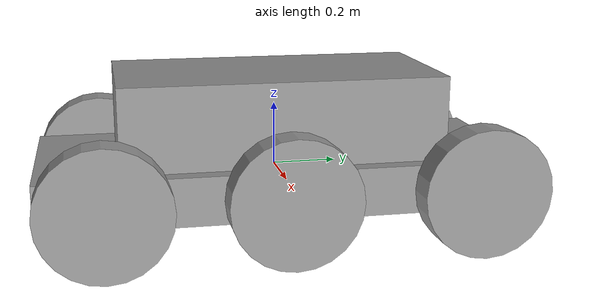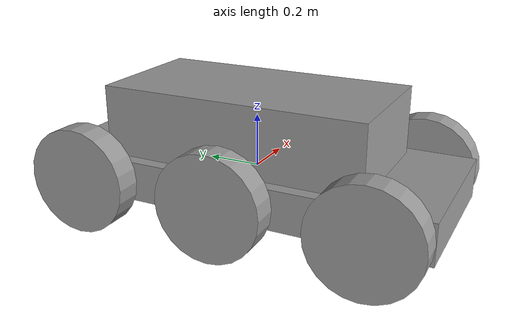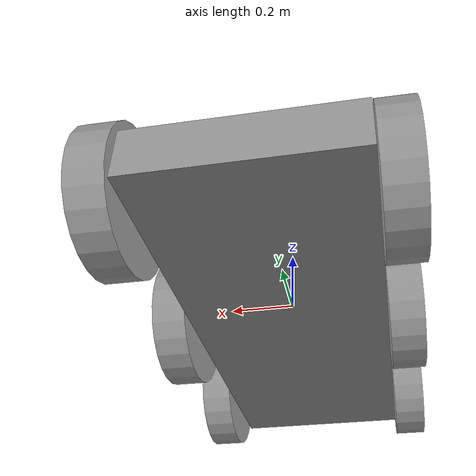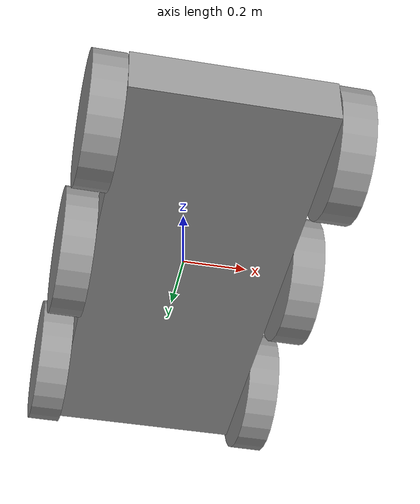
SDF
<?xml version='1.0'?>
<sdf version='1.6'>
  <model name='Humanoid_Robot'>
    <link name='link_0'>
      <pose frame=''>0 -0.004307 -0.025 0 -0 0</pose>
      <inertial>
        <mass>1</mass>
        <inertia>
          <ixx>0.166667</ixx>
          <ixy>0</ixy>
          <ixz>0</ixz>
          <iyy>0.166667</iyy>
          <iyz>0</iyz>
          <izz>0.166667</izz>
        </inertia>
        <pose frame=''>0 0 0 0 -0 0</pose>
      </inertial>
      <gravity>1</gravity>
      <self_collide>0</self_collide>
      <kinematic>0</kinematic>
      <visual name='visual'>
        <pose frame=''>0 0 0 0 -0 0</pose>
        <geometry>
          <box>
            <size>0.6 1.5 0.15</size>
          </box>
        </geometry>
        <material>
          <lighting>1</lighting>
          <script>
            <uri>file://media/materials/scripts/gazebo.material</uri>
            <name>Gazebo/Grey</name>
          </script>
          <shader type='pixel'>
            <normal_map>__default__</normal_map>
          </shader>
          <ambient>0.3 0.3 0.3 1</ambient>
          <diffuse>0.7 0.7 0.7 1</diffuse>
          <specular>0.01 0.01 0.01 1</specular>
          <emissive>0 0 0 1</emissive>
        </material>
        <transparency>0</transparency>
        <cast_shadows>1</cast_shadows>
      </visual>
      <collision name='collision'>
        <laser_retro>0</laser_retro>
        <max_contacts>10</max_contacts>
        <pose frame=''>0 0 0 0 -0 0</pose>
        <geometry>
          <box>
            <size>0.6 1.5 0.15</size>
          </box>
        </geometry>
        <surface>
          <friction>
            <ode>
              <mu>1</mu>
              <mu2>1</mu2>
              <fdir1>0 0 0</fdir1>
              <slip1>0</slip1>
              <slip2>0</slip2>
            </ode>
            <torsional>
              <coefficient>1</coefficient>
              <patch_radius>0</patch_radius>
              <surface_radius>0</surface_radius>
              <use_patch_radius>1</use_patch_radius>
              <ode>
                <slip>0</slip>
              </ode>
            </torsional>
          </friction>
          <bounce>
            <restitution_coefficient>0</restitution_coefficient>
            <threshold>1e+06</threshold>
          </bounce>
          <contact>
            <collide_without_contact>0</collide_without_contact>
            <collide_without_contact_bitmask>1</collide_without_contact_bitmask>
            <collide_bitmask>1</collide_bitmask>
            <ode>
              <soft_cfm>0</soft_cfm>
              <soft_erp>0.2</soft_erp>
              <kp>1e+13</kp>
              <kd>1</kd>
              <max_vel>0.01</max_vel>
              <min_depth>0</min_depth>
            </ode>
            <bullet>
              <split_impulse>1</split_impulse>
              <split_impulse_penetration_threshold>-0.01</split_impulse_penetration_threshold>
              <soft_cfm>0</soft_cfm>
              <soft_erp>0.2</soft_erp>
              <kp>1e+13</kp>
              <kd>1</kd>
            </bullet>
          </contact>
        </surface>
      </collision>
    </link>
    <link name='link_1_clone'>
      <pose frame=''>-0.351854 0.545219 -0.025 1.57079 -9.6e-05 -1.56152</pose>
      <inertial>
        <mass>1</mass>
        <inertia>
          <ixx>0.145833</ixx>
          <ixy>0</ixy>
          <ixz>0</ixz>
          <iyy>0.145833</iyy>
          <iyz>0</iyz>
          <izz>0.125</izz>
        </inertia>
        <pose frame=''>0 0 0 0 -0 0</pose>
      </inertial>
      <self_collide>0</self_collide>
      <kinematic>0</kinematic>
      <visual name='visual'>
        <pose frame=''>0 0 0 0 -0 0</pose>
        <geometry>
          <cylinder>
            <radius>0.2</radius>
            <length>0.1</length>
          </cylinder>
        </geometry>
        <material>
          <lighting>1</lighting>
          <script>
            <uri>file://media/materials/scripts/gazebo.material</uri>
            <name>Gazebo/Grey</name>
          </script>
          <shader type='pixel'>
            <normal_map>__default__</normal_map>
          </shader>
          <ambient>0.3 0.3 0.3 1</ambient>
          <diffuse>0.7 0.7 0.7 1</diffuse>
          <specular>0.01 0.01 0.01 1</specular>
          <emissive>0 0 0 1</emissive>
        </material>
        <transparency>0</transparency>
        <cast_shadows>1</cast_shadows>
      </visual>
      <collision name='collision'>
        <laser_retro>0</laser_retro>
        <max_contacts>10</max_contacts>
        <pose frame=''>0 0 0 0 -0 0</pose>
        <geometry>
          <cylinder>
            <radius>0.2</radius>
            <length>0.1</length>
          </cylinder>
        </geometry>
        <surface>
          <friction>
            <ode>
              <mu>1</mu>
              <mu2>1</mu2>
              <fdir1>0 0 0</fdir1>
              <slip1>0</slip1>
              <slip2>0</slip2>
            </ode>
            <torsional>
              <coefficient>1</coefficient>
              <patch_radius>0</patch_radius>
              <surface_radius>0</surface_radius>
              <use_patch_radius>1</use_patch_radius>
              <ode>
                <slip>0</slip>
              </ode>
            </torsional>
          </friction>
          <bounce>
            <restitution_coefficient>0</restitution_coefficient>
            <threshold>1e+06</threshold>
          </bounce>
          <contact>
            <collide_without_contact>0</collide_without_contact>
            <collide_without_contact_bitmask>1</collide_without_contact_bitmask>
            <collide_bitmask>1</collide_bitmask>
            <ode>
              <soft_cfm>0</soft_cfm>
              <soft_erp>0.2</soft_erp>
              <kp>1e+13</kp>
              <kd>1</kd>
              <max_vel>0.01</max_vel>
              <min_depth>0</min_depth>
            </ode>
            <bullet>
              <split_impulse>1</split_impulse>
              <split_impulse_penetration_threshold>-0.01</split_impulse_penetration_threshold>
              <soft_cfm>0</soft_cfm>
              <soft_erp>0.2</soft_erp>
              <kp>1e+13</kp>
              <kd>1</kd>
            </bullet>
          </contact>
        </surface>
      </collision>
    </link>
    <link name='link_1_clone_0'>
      <pose frame=''>-0.351854 -0.553832 -0.025 1.57079 -9.6e-05 -1.56152</pose>
      <inertial>
        <mass>1</mass>
        <inertia>
          <ixx>0.145833</ixx>
          <ixy>0</ixy>
          <ixz>0</ixz>
          <iyy>0.145833</iyy>
          <iyz>0</iyz>
          <izz>0.125</izz>
        </inertia>
        <pose frame=''>0 0 0 0 -0 0</pose>
      </inertial>
      <self_collide>0</self_collide>
      <kinematic>0</kinematic>
      <visual name='visual'>
        <pose frame=''>0 0 0 0 -0 0</pose>
        <geometry>
          <cylinder>
            <radius>0.2</radius>
            <length>0.1</length>
          </cylinder>
        </geometry>
        <material>
          <lighting>1</lighting>
          <script>
            <uri>file://media/materials/scripts/gazebo.material</uri>
            <name>Gazebo/Grey</name>
          </script>
          <shader type='pixel'>
            <normal_map>__default__</normal_map>
          </shader>
          <ambient>0.3 0.3 0.3 1</ambient>
          <diffuse>0.7 0.7 0.7 1</diffuse>
          <specular>0.01 0.01 0.01 1</specular>
          <emissive>0 0 0 1</emissive>
        </material>
        <transparency>0</transparency>
        <cast_shadows>1</cast_shadows>
      </visual>
      <collision name='collision'>
        <laser_retro>0</laser_retro>
        <max_contacts>10</max_contacts>
        <pose frame=''>0 0 0 0 -0 0</pose>
        <geometry>
          <cylinder>
            <radius>0.2</radius>
            <length>0.1</length>
          </cylinder>
        </geometry>
        <surface>
          <friction>
            <ode>
              <mu>1</mu>
              <mu2>1</mu2>
              <fdir1>0 0 0</fdir1>
              <slip1>0</slip1>
              <slip2>0</slip2>
            </ode>
            <torsional>
              <coefficient>1</coefficient>
              <patch_radius>0</patch_radius>
              <surface_radius>0</surface_radius>
              <use_patch_radius>1</use_patch_radius>
              <ode>
                <slip>0</slip>
              </ode>
            </torsional>
          </friction>
          <bounce>
            <restitution_coefficient>0</restitution_coefficient>
            <threshold>1e+06</threshold>
          </bounce>
          <contact>
            <collide_without_contact>0</collide_without_contact>
            <collide_without_contact_bitmask>1</collide_without_contact_bitmask>
            <collide_bitmask>1</collide_bitmask>
            <ode>
              <soft_cfm>0</soft_cfm>
              <soft_erp>0.2</soft_erp>
              <kp>1e+13</kp>
              <kd>1</kd>
              <max_vel>0.01</max_vel>
              <min_depth>0</min_depth>
            </ode>
            <bullet>
              <split_impulse>1</split_impulse>
              <split_impulse_penetration_threshold>-0.01</split_impulse_penetration_threshold>
              <soft_cfm>0</soft_cfm>
              <soft_erp>0.2</soft_erp>
              <kp>1e+13</kp>
              <kd>1</kd>
            </bullet>
          </contact>
        </surface>
      </collision>
    </link>
    <link name='link_1_clone_1'>
      <pose frame=''>0.351854 0.579674 -0.025 1.57079 -9.6e-05 -1.56152</pose>
      <inertial>
        <mass>1</mass>
        <inertia>
          <ixx>0.145833</ixx>
          <ixy>0</ixy>
          <ixz>0</ixz>
          <iyy>0.145833</iyy>
          <iyz>0</iyz>
          <izz>0.125</izz>
        </inertia>
        <pose frame=''>0 0 0 0 -0 0</pose>
      </inertial>
      <self_collide>0</self_collide>
      <kinematic>0</kinematic>
      <visual name='visual'>
        <pose frame=''>0 0 0 0 -0 0</pose>
        <geometry>
          <cylinder>
            <radius>0.2</radius>
            <length>0.1</length>
          </cylinder>
        </geometry>
        <material>
          <lighting>1</lighting>
          <script>
            <uri>file://media/materials/scripts/gazebo.material</uri>
            <name>Gazebo/Grey</name>
          </script>
          <shader type='pixel'>
            <normal_map>__default__</normal_map>
          </shader>
          <ambient>0.3 0.3 0.3 1</ambient>
          <diffuse>0.7 0.7 0.7 1</diffuse>
          <specular>0.01 0.01 0.01 1</specular>
          <emissive>0 0 0 1</emissive>
        </material>
        <transparency>0</transparency>
        <cast_shadows>1</cast_shadows>
      </visual>
      <collision name='collision'>
        <laser_retro>0</laser_retro>
        <max_contacts>10</max_contacts>
        <pose frame=''>0 0 0 0 -0 0</pose>
        <geometry>
          <cylinder>
            <radius>0.2</radius>
            <length>0.1</length>
          </cylinder>
        </geometry>
        <surface>
          <friction>
            <ode>
              <mu>1</mu>
              <mu2>1</mu2>
              <fdir1>0 0 0</fdir1>
              <slip1>0</slip1>
              <slip2>0</slip2>
            </ode>
            <torsional>
              <coefficient>1</coefficient>
              <patch_radius>0</patch_radius>
              <surface_radius>0</surface_radius>
              <use_patch_radius>1</use_patch_radius>
              <ode>
                <slip>0</slip>
              </ode>
            </torsional>
          </friction>
          <bounce>
            <restitution_coefficient>0</restitution_coefficient>
            <threshold>1e+06</threshold>
          </bounce>
          <contact>
            <collide_without_contact>0</collide_without_contact>
            <collide_without_contact_bitmask>1</collide_without_contact_bitmask>
            <collide_bitmask>1</collide_bitmask>
            <ode>
              <soft_cfm>0</soft_cfm>
              <soft_erp>0.2</soft_erp>
              <kp>1e+13</kp>
              <kd>1</kd>
              <max_vel>0.01</max_vel>
              <min_depth>0</min_depth>
            </ode>
            <bullet>
              <split_impulse>1</split_impulse>
              <split_impulse_penetration_threshold>-0.01</split_impulse_penetration_threshold>
              <soft_cfm>0</soft_cfm>
              <soft_erp>0.2</soft_erp>
              <kp>1e+13</kp>
              <kd>1</kd>
            </bullet>
          </contact>
        </surface>
      </collision>
    </link>
    <link name='link_1_clone_1_clone'>
      <pose frame=''>0.351854 -0.004307 -0.025 1.57079 -9.6e-05 -1.56152</pose>
      <inertial>
        <mass>1</mass>
        <inertia>
          <ixx>0.145833</ixx>
          <ixy>0</ixy>
          <ixz>0</ixz>
          <iyy>0.145833</iyy>
          <iyz>0</iyz>
          <izz>0.125</izz>
        </inertia>
        <pose frame=''>0 0 0 0 -0 0</pose>
      </inertial>
      <self_collide>0</self_collide>
      <kinematic>0</kinematic>
      <visual name='visual'>
        <pose frame=''>0 0 0 0 -0 0</pose>
        <geometry>
          <cylinder>
            <radius>0.2</radius>
            <length>0.1</length>
          </cylinder>
        </geometry>
        <material>
          <lighting>1</lighting>
          <script>
            <uri>file://media/materials/scripts/gazebo.material</uri>
            <name>Gazebo/Grey</name>
          </script>
          <shader type='pixel'>
            <normal_map>__default__</normal_map>
          </shader>
          <ambient>0.3 0.3 0.3 1</ambient>
          <diffuse>0.7 0.7 0.7 1</diffuse>
          <specular>0.01 0.01 0.01 1</specular>
          <emissive>0 0 0 1</emissive>
        </material>
        <transparency>0</transparency>
        <cast_shadows>1</cast_shadows>
      </visual>
      <collision name='collision'>
        <laser_retro>0</laser_retro>
        <max_contacts>10</max_contacts>
        <pose frame=''>0 0 0 0 -0 0</pose>
        <geometry>
          <cylinder>
            <radius>0.2</radius>
            <length>0.1</length>
          </cylinder>
        </geometry>
        <surface>
          <friction>
            <ode>
              <mu>1</mu>
              <mu2>1</mu2>
              <fdir1>0 0 0</fdir1>
              <slip1>0</slip1>
              <slip2>0</slip2>
            </ode>
            <torsional>
              <coefficient>1</coefficient>
              <patch_radius>0</patch_radius>
              <surface_radius>0</surface_radius>
              <use_patch_radius>1</use_patch_radius>
              <ode>
                <slip>0</slip>
              </ode>
            </torsional>
          </friction>
          <bounce>
            <restitution_coefficient>0</restitution_coefficient>
            <threshold>1e+06</threshold>
          </bounce>
          <contact>
            <collide_without_contact>0</collide_without_contact>
            <collide_without_contact_bitmask>1</collide_without_contact_bitmask>
            <collide_bitmask>1</collide_bitmask>
            <ode>
              <soft_cfm>0</soft_cfm>
              <soft_erp>0.2</soft_erp>
              <kp>1e+13</kp>
              <kd>1</kd>
              <max_vel>0.01</max_vel>
              <min_depth>0</min_depth>
            </ode>
            <bullet>
              <split_impulse>1</split_impulse>
              <split_impulse_penetration_threshold>-0.01</split_impulse_penetration_threshold>
              <soft_cfm>0</soft_cfm>
              <soft_erp>0.2</soft_erp>
              <kp>1e+13</kp>
              <kd>1</kd>
            </bullet>
          </contact>
        </surface>
      </collision>
    </link>
    <link name='link_1_clone_2'>
      <pose frame=''>-0.351854 -0.004307 -0.025 1.57079 -9.6e-05 -1.56152</pose>
      <inertial>
        <mass>1</mass>
        <inertia>
          <ixx>0.145833</ixx>
          <ixy>0</ixy>
          <ixz>0</ixz>
          <iyy>0.145833</iyy>
          <iyz>0</iyz>
          <izz>0.125</izz>
        </inertia>
        <pose frame=''>0 0 0 0 -0 0</pose>
      </inertial>
      <self_collide>0</self_collide>
      <kinematic>0</kinematic>
      <visual name='visual'>
        <pose frame=''>0 0 0 0 -0 0</pose>
        <geometry>
          <cylinder>
            <radius>0.2</radius>
            <length>0.1</length>
          </cylinder>
        </geometry>
        <material>
          <lighting>1</lighting>
          <script>
            <uri>file://media/materials/scripts/gazebo.material</uri>
            <name>Gazebo/Grey</name>
          </script>
          <shader type='pixel'>
            <normal_map>__default__</normal_map>
          </shader>
          <ambient>0.3 0.3 0.3 1</ambient>
          <diffuse>0.7 0.7 0.7 1</diffuse>
          <specular>0.01 0.01 0.01 1</specular>
          <emissive>0 0 0 1</emissive>
        </material>
        <transparency>0</transparency>
        <cast_shadows>1</cast_shadows>
      </visual>
      <collision name='collision'>
        <laser_retro>0</laser_retro>
        <max_contacts>10</max_contacts>
        <pose frame=''>0 0 0 0 -0 0</pose>
        <geometry>
          <cylinder>
            <radius>0.2</radius>
            <length>0.1</length>
          </cylinder>
        </geometry>
        <surface>
          <friction>
            <ode>
              <mu>1</mu>
              <mu2>1</mu2>
              <fdir1>0 0 0</fdir1>
              <slip1>0</slip1>
              <slip2>0</slip2>
            </ode>
            <torsional>
              <coefficient>1</coefficient>
              <patch_radius>0</patch_radius>
              <surface_radius>0</surface_radius>
              <use_patch_radius>1</use_patch_radius>
              <ode>
                <slip>0</slip>
              </ode>
            </torsional>
          </friction>
          <bounce>
            <restitution_coefficient>0</restitution_coefficient>
            <threshold>1e+06</threshold>
          </bounce>
          <contact>
            <collide_without_contact>0</collide_without_contact>
            <collide_without_contact_bitmask>1</collide_without_contact_bitmask>
            <collide_bitmask>1</collide_bitmask>
            <ode>
              <soft_cfm>0</soft_cfm>
              <soft_erp>0.2</soft_erp>
              <kp>1e+13</kp>
              <kd>1</kd>
              <max_vel>0.01</max_vel>
              <min_depth>0</min_depth>
            </ode>
            <bullet>
              <split_impulse>1</split_impulse>
              <split_impulse_penetration_threshold>-0.01</split_impulse_penetration_threshold>
              <soft_cfm>0</soft_cfm>
              <soft_erp>0.2</soft_erp>
              <kp>1e+13</kp>
              <kd>1</kd>
            </bullet>
          </contact>
        </surface>
      </collision>
    </link>
    <link name='link_1_clone_3'>
      <pose frame=''>0.351854 -0.553832 -0.025 1.57079 -9.6e-05 -1.56152</pose>
      <inertial>
        <mass>1</mass>
        <inertia>
          <ixx>0.145833</ixx>
          <ixy>0</ixy>
          <ixz>0</ixz>
          <iyy>0.145833</iyy>
          <iyz>0</iyz>
          <izz>0.125</izz>
        </inertia>
        <pose frame=''>0 0 0 0 -0 0</pose>
      </inertial>
      <self_collide>0</self_collide>
      <kinematic>0</kinematic>
      <visual name='visual'>
        <pose frame=''>0 0 0 0 -0 0</pose>
        <geometry>
          <cylinder>
            <radius>0.2</radius>
            <length>0.1</length>
          </cylinder>
        </geometry>
        <material>
          <lighting>1</lighting>
          <script>
            <uri>file://media/materials/scripts/gazebo.material</uri>
            <name>Gazebo/Grey</name>
          </script>
          <shader type='pixel'>
            <normal_map>__default__</normal_map>
          </shader>
          <ambient>0.3 0.3 0.3 1</ambient>
          <diffuse>0.7 0.7 0.7 1</diffuse>
          <specular>0.01 0.01 0.01 1</specular>
          <emissive>0 0 0 1</emissive>
        </material>
        <transparency>0</transparency>
        <cast_shadows>1</cast_shadows>
      </visual>
      <collision name='collision'>
        <laser_retro>0</laser_retro>
        <max_contacts>10</max_contacts>
        <pose frame=''>0 0 0 0 -0 0</pose>
        <geometry>
          <cylinder>
            <radius>0.2</radius>
            <length>0.1</length>
          </cylinder>
        </geometry>
        <surface>
          <friction>
            <ode>
              <mu>1</mu>
              <mu2>1</mu2>
              <fdir1>0 0 0</fdir1>
              <slip1>0</slip1>
              <slip2>0</slip2>
            </ode>
            <torsional>
              <coefficient>1</coefficient>
              <patch_radius>0</patch_radius>
              <surface_radius>0</surface_radius>
              <use_patch_radius>1</use_patch_radius>
              <ode>
                <slip>0</slip>
              </ode>
            </torsional>
          </friction>
          <bounce>
            <restitution_coefficient>0</restitution_coefficient>
            <threshold>1e+06</threshold>
          </bounce>
          <contact>
            <collide_without_contact>0</collide_without_contact>
            <collide_without_contact_bitmask>1</collide_without_contact_bitmask>
            <collide_bitmask>1</collide_bitmask>
            <ode>
              <soft_cfm>0</soft_cfm>
              <soft_erp>0.2</soft_erp>
              <kp>1e+13</kp>
              <kd>1</kd>
              <max_vel>0.01</max_vel>
              <min_depth>0</min_depth>
            </ode>
            <bullet>
              <split_impulse>1</split_impulse>
              <split_impulse_penetration_threshold>-0.01</split_impulse_penetration_threshold>
              <soft_cfm>0</soft_cfm>
              <soft_erp>0.2</soft_erp>
              <kp>1e+13</kp>
              <kd>1</kd>
            </bullet>
          </contact>
        </surface>
      </collision>
    </link>
    <link name='link_2'>
      <pose frame=''>0 -0.004307 0.175 0 -0 0</pose>
      <inertial>
        <mass>1</mass>
        <inertia>
          <ixx>0.166667</ixx>
          <ixy>0</ixy>
          <ixz>0</ixz>
          <iyy>0.166667</iyy>
          <iyz>0</iyz>
          <izz>0.166667</izz>
        </inertia>
        <pose frame=''>0 0 0 0 -0 0</pose>
      </inertial>
      <gravity>1</gravity>
      <self_collide>0</self_collide>
      <kinematic>0</kinematic>
      <visual name='visual'>
        <pose frame=''>0 0 0 0 -0 0</pose>
        <geometry>
          <box>
            <size>0.5 1 0.27</size>
          </box>
        </geometry>
        <material>
          <lighting>1</lighting>
          <script>
            <uri>file://media/materials/scripts/gazebo.material</uri>
            <name>Gazebo/Grey</name>
          </script>
          <shader type='pixel'>
            <normal_map>__default__</normal_map>
          </shader>
          <ambient>0.3 0.3 0.3 1</ambient>
          <diffuse>0.7 0.7 0.7 1</diffuse>
          <specular>0.01 0.01 0.01 1</specular>
          <emissive>0 0 0 1</emissive>
        </material>
        <transparency>0</transparency>
        <cast_shadows>1</cast_shadows>
      </visual>
      <collision name='collision'>
        <laser_retro>0</laser_retro>
        <max_contacts>10</max_contacts>
        <pose frame=''>0 0 0 0 -0 0</pose>
        <geometry>
          <box>
            <size>0.5 1 0.3</size>
          </box>
        </geometry>
        <surface>
          <friction>
            <ode>
              <mu>1</mu>
              <mu2>1</mu2>
              <fdir1>0 0 0</fdir1>
              <slip1>0</slip1>
              <slip2>0</slip2>
            </ode>
            <torsional>
              <coefficient>1</coefficient>
              <patch_radius>0</patch_radius>
              <surface_radius>0</surface_radius>
              <use_patch_radius>1</use_patch_radius>
              <ode>
                <slip>0</slip>
              </ode>
            </torsional>
          </friction>
          <bounce>
            <restitution_coefficient>0</restitution_coefficient>
            <threshold>1e+06</threshold>
          </bounce>
          <contact>
            <collide_without_contact>0</collide_without_contact>
            <collide_without_contact_bitmask>1</collide_without_contact_bitmask>
            <collide_bitmask>1</collide_bitmask>
            <ode>
              <soft_cfm>0</soft_cfm>
              <soft_erp>0.2</soft_erp>
              <kp>1e+13</kp>
              <kd>1</kd>
              <max_vel>0.01</max_vel>
              <min_depth>0</min_depth>
            </ode>
            <bullet>
              <split_impulse>1</split_impulse>
              <split_impulse_penetration_threshold>-0.01</split_impulse_penetration_threshold>
              <soft_cfm>0</soft_cfm>
              <soft_erp>0.2</soft_erp>
              <kp>1e+13</kp>
              <kd>1</kd>
            </bullet>
          </contact>
        </surface>
      </collision>
    </link>
    <joint name='link_0_JOINT_0' type='revolute'>
      <parent>link_0</parent>
      <child>link_1_clone_0</child>
      <pose frame=''>0 0 0 0 -0 0</pose>
      <axis>
        <xyz>0 0 1</xyz>
        <use_parent_model_frame>0</use_parent_model_frame>
        <limit>
          <lower>-1.79769e+308</lower>
          <upper>1.79769e+308</upper>
          <effort>-1</effort>
          <velocity>-1</velocity>
        </limit>
        <dynamics>
          <spring_reference>0</spring_reference>
          <spring_stiffness>0</spring_stiffness>
          <damping>0</damping>
        </dynamics>
      </axis>
      <physics>
        <ode>
          <limit>
            <cfm>0</cfm>
            <erp>0.2</erp>
          </limit>
          <suspension>
            <cfm>0</cfm>
            <erp>0.2</erp>
          </suspension>
        </ode>
      </physics>
    </joint>
    <joint name='link_0_JOINT_10' type='revolute'>
      <parent>link_0</parent>
      <child>link_1_clone_1_clone</child>
      <pose frame=''>0 0 0 0 -0 0</pose>
      <axis>
        <xyz>-0 -0 -1</xyz>
        <use_parent_model_frame>0</use_parent_model_frame>
        <limit>
          <lower>-1.79769e+308</lower>
          <upper>1.79769e+308</upper>
          <effort>-1</effort>
          <velocity>-1</velocity>
        </limit>
        <dynamics>
          <spring_reference>0</spring_reference>
          <spring_stiffness>0</spring_stiffness>
          <damping>0</damping>
        </dynamics>
      </axis>
      <physics>
        <ode>
          <limit>
            <cfm>0</cfm>
            <erp>0.2</erp>
          </limit>
          <suspension>
            <cfm>0</cfm>
            <erp>0.2</erp>
          </suspension>
        </ode>
      </physics>
    </joint>
    <joint name='link_0_JOINT_2' type='revolute'>
      <parent>link_0</parent>
      <child>link_1_clone_3</child>
      <pose frame=''>0 0 0 0 -0 0</pose>
      <axis>
        <xyz>-0 -0 -1</xyz>
        <use_parent_model_frame>0</use_parent_model_frame>
        <limit>
          <lower>-1.79769e+308</lower>
          <upper>1.79769e+308</upper>
          <effort>-1</effort>
          <velocity>-1</velocity>
        </limit>
        <dynamics>
          <spring_reference>0</spring_reference>
          <spring_stiffness>0</spring_stiffness>
          <damping>0</damping>
        </dynamics>
      </axis>
      <physics>
        <ode>
          <limit>
            <cfm>0</cfm>
            <erp>0.2</erp>
          </limit>
          <suspension>
            <cfm>0</cfm>
            <erp>0.2</erp>
          </suspension>
        </ode>
      </physics>
    </joint>
    <joint name='link_0_JOINT_3' type='revolute'>
      <parent>link_0</parent>
      <child>link_1_clone_1</child>
      <pose frame=''>0 0 0 0 -0 0</pose>
      <axis>
        <xyz>-0 -0 -1</xyz>
        <use_parent_model_frame>0</use_parent_model_frame>
        <limit>
          <lower>-1.79769e+308</lower>
          <upper>1.79769e+308</upper>
          <effort>-1</effort>
          <velocity>-1</velocity>
        </limit>
        <dynamics>
          <spring_reference>0</spring_reference>
          <spring_stiffness>0</spring_stiffness>
          <damping>0</damping>
        </dynamics>
      </axis>
      <physics>
        <ode>
          <limit>
            <cfm>0</cfm>
            <erp>0.2</erp>
          </limit>
          <suspension>
            <cfm>0</cfm>
            <erp>0.2</erp>
          </suspension>
        </ode>
      </physics>
    </joint>
    <joint name='link_0_JOINT_4' type='revolute'>
      <parent>link_0</parent>
      <child>link_1_clone</child>
      <pose frame=''>0 0 0 0 -0 0</pose>
      <axis>
        <xyz>0 0 1</xyz>
        <use_parent_model_frame>0</use_parent_model_frame>
        <limit>
          <lower>-1.79769e+308</lower>
          <upper>1.79769e+308</upper>
          <effort>-1</effort>
          <velocity>-1</velocity>
        </limit>
        <dynamics>
          <spring_reference>0</spring_reference>
          <spring_stiffness>0</spring_stiffness>
          <damping>0</damping>
        </dynamics>
      </axis>
      <physics>
        <ode>
          <limit>
            <cfm>0</cfm>
            <erp>0.2</erp>
          </limit>
          <suspension>
            <cfm>0</cfm>
            <erp>0.2</erp>
          </suspension>
        </ode>
      </physics>
    </joint>
    <joint name='link_0_JOINT_6' type='revolute'>
      <parent>link_0</parent>
      <child>link_1_clone_2</child>
      <pose frame=''>0 0 0 0 -0 0</pose>
      <axis>
        <xyz>0 0 1</xyz>
        <use_parent_model_frame>0</use_parent_model_frame>
        <limit>
          <lower>-1.79769e+308</lower>
          <upper>1.79769e+308</upper>
          <effort>-1</effort>
          <velocity>-1</velocity>
        </limit>
        <dynamics>
          <spring_reference>0</spring_reference>
          <spring_stiffness>0</spring_stiffness>
          <damping>0</damping>
        </dynamics>
      </axis>
      <physics>
        <ode>
          <limit>
            <cfm>0</cfm>
            <erp>0.2</erp>
          </limit>
          <suspension>
            <cfm>0</cfm>
            <erp>0.2</erp>
          </suspension>
        </ode>
      </physics>
    </joint>
    <static>0</static>
    <allow_auto_disable>1</allow_auto_disable>
  </model>
</sdf>
